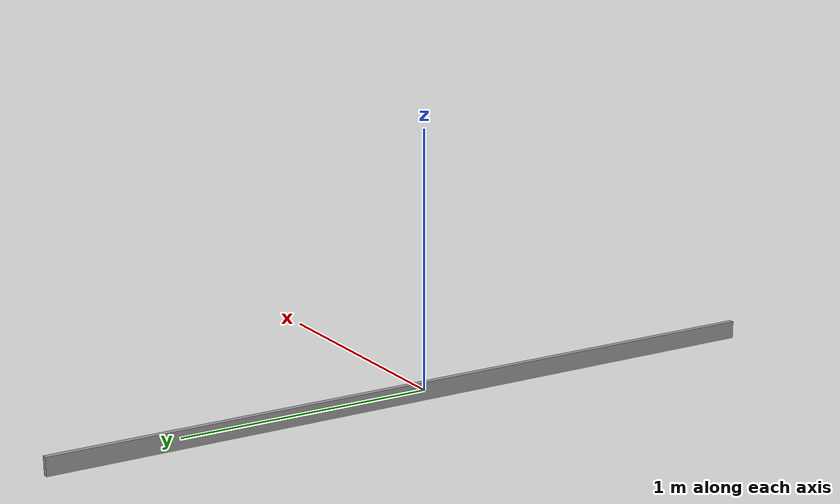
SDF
<?xml version="1.0"?>
<sdf version="1.5">
    <model name="wall_3m">
        <static>false</static>
        <link name="table_wall_3m">
            <collision name="collision">
                <geometry>
                    <box>
                        <size>0.022 3 0.070</size>
                    </box>
                </geometry>
                <surface>
                    <friction>
                        <ode>
                            <mu>100</mu>
                            <mu2>50</mu2>
                        </ode>
                    </friction>
                </surface>
            </collision>
            <visual name="visual">
                <geometry>
                    <box>
                        <size>0.022 3 0.070</size>
                    </box>
                </geometry>
                <material>
                    <script>
                        <uri>file://media/materials/scripts/gazebo.material</uri>
                        <name>Gazebo/Grey</name>
                    </script>
                </material>
            </visual>
        </link>
    </model>
</sdf>
